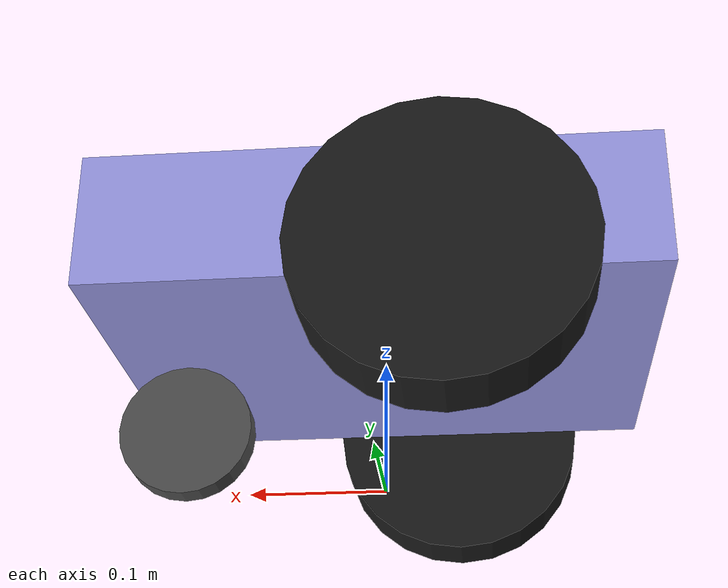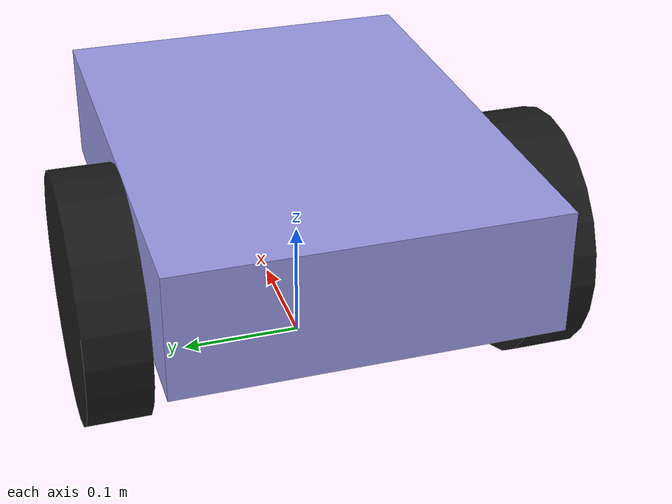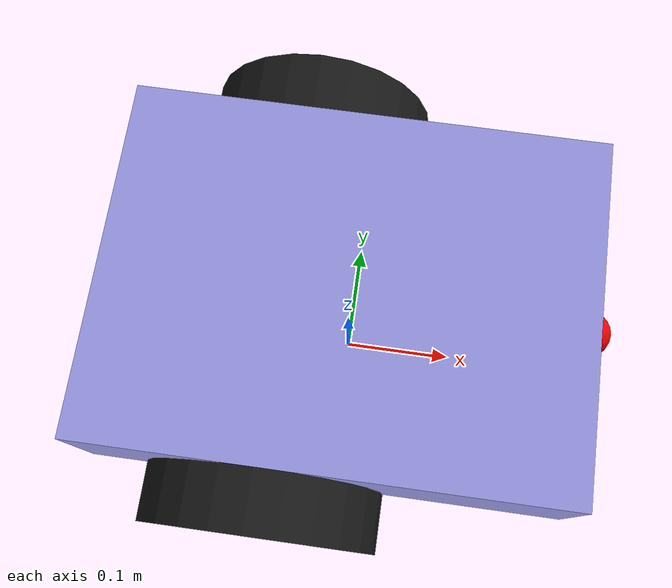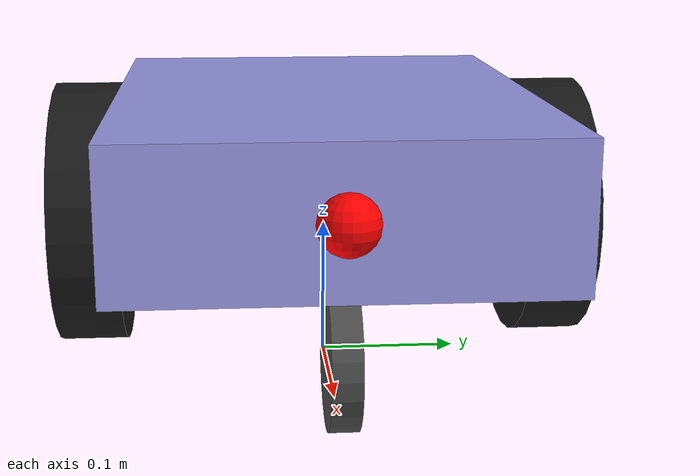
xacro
<?xml version="1.0"?>
<robot xmlns:xacro="http://ros.org/wiki/xacro" name="ground_robot">

    <xacro:arg      name="namespace"       default="!!!"/>

    <!-- Parameters -->
    <!-- chassis geometry -->
    <xacro:property name="body_length"     value="0.4"/>
    <xacro:property name="body_width"      value="0.3"/>
    <xacro:property name="body_thickness"  value="0.1"/>

    <!-- drive wheel geometry -->
    <xacro:property name="drive_wheel_radius"    value="0.1"/>
    <xacro:property name="drive_wheel_width"     value="0.05"/>
    <xacro:property name="drive_wheel_x_offset"  value="0.05"/>

    <!-- caster geometry -->
    <xacro:property name="caster_radius"   value="0.05"/>
    <xacro:property name="caster_width"    value="0.02"/>

    <!-- Base frame -->
    <link name="base_link"/>
    <joint name="base_to_chassis" type="fixed">
        <parent link="base_link"/>
        <child  link="chassis_link"/>
        <origin xyz="0 0 0" rpy="0 0 0"/>
    </joint>

    <!-- Wheel macro: generates wheel link + joint -->
    <xacro:macro name="wheel" params="name parent_link xpos ypos radius width">
      <link name="${name}">
        <visual>
          <!-- rotate cylinder so its axis is along Y -->
          <origin xyz="0 0 0" rpy="1.5708 0 0"/>
          <geometry>
            <cylinder length="${width}" radius="${radius}"/>
          </geometry>
          <material name="${name}_material">
            <color rgba="0.1 0.1 0.1 1.0"/>
          </material>
        </visual>
        <collision>
          <origin xyz="0 0 0" rpy="1.5708 0 0"/>
          <geometry>
            <cylinder length="${width}" radius="${radius}"/>
          </geometry>
        </collision>
        <inertial>
          <mass value="0.5"/>
          <inertia ixx="0.0005" ixy="0.0" ixz="0.0"
                  iyy="0.0005" iyz="0.0"
                  izz="0.0005"/>
        </inertial>
      </link>
      <joint name="${name}_joint" type="continuous">
        <parent link="${parent_link}"/>
        <child  link="${name}"/>
        <!-- lift wheel so it sits on ground -->
        <origin xyz="${xpos} ${ypos} ${radius}" rpy="0 0 0"/>
        <axis   xyz="0 1 0"/>
      </joint>
    </xacro:macro>

    <!-- Chassis link -->
    <link name="chassis_link">
      <visual>
        <!-- lift chassis so it's centered on wheels -->
        <origin xyz="0 0 ${drive_wheel_radius + body_thickness/2}" rpy="0 0 0"/>
        <geometry>
          <box size="${body_length} ${body_width} ${body_thickness}"/>
        </geometry>
        <material name="chassis_material">
          <color rgba="0.6 0.6 0.9 1.0"/>
        </material>
      </visual>
      <collision>
        <origin xyz="0 0 ${drive_wheel_radius + body_thickness/2}" rpy="0 0 0"/>
        <geometry>
          <box size="${body_length} ${body_width} ${body_thickness}"/>
        </geometry>
      </collision>
      <inertial>
        <mass value="2.0"/>
        <inertia ixx="0.03" ixy="0.0" ixz="0.0"
                iyy="0.04" iyz="0.0"
                izz="0.05"/>
      </inertial>
    </link>

    <!-- Differential-drive wheels, shifted backward -->
    <xacro:wheel name="wheel_left"  parent_link="chassis_link"
                xpos="${-drive_wheel_x_offset}" ypos="${(body_width/2 + drive_wheel_width/2)}"
                radius="${drive_wheel_radius}" width="${drive_wheel_width}"/>
    <xacro:wheel name="wheel_right" parent_link="chassis_link"
                xpos="${-drive_wheel_x_offset}" ypos="${-(body_width/2 + drive_wheel_width/2)}"
                radius="${drive_wheel_radius}" width="${drive_wheel_width}"/>

    <!-- Caster wheel link -->
    <link name="caster_link">
      <visual>
        <!-- orient cylinder axis along Y for rolling -->
        <origin xyz="0 0 0" rpy="1.5708 0 0"/>
        <geometry>
          <cylinder length="${caster_width}" radius="${caster_radius}"/>
        </geometry>
        <material name="caster_material">
          <color rgba="0.3 0.3 0.3 1.0"/>
        </material>
      </visual>
      <collision>
        <origin xyz="0 0 0" rpy="1.5708 0 0"/>
        <geometry>
          <cylinder length="${caster_width}" radius="${caster_radius}"/>
        </geometry>
      </collision>
      <inertial>
        <mass value="0.1"/>
        <inertia ixx="0.0001" ixy="0.0" ixz="0.0"
                iyy="0.0001" iyz="0.0"
                izz="0.0001"/>
      </inertial>
    </link>
    <joint name="caster_wheel_joint" type="continuous">
      <parent link="chassis_link"/>
      <child  link="caster_link"/>
      <!-- place caster at front of chassis, sitting on ground -->
      <origin xyz="${body_length/2 - caster_radius} 0 ${caster_radius}" rpy="0 0 0"/>
      <axis xyz="0 0 1"/>
    </joint>

    <!-- Laser sensor link -->
    <link name="laser_link">
      <visual>
        <origin xyz="0 0 0" rpy="0 0 0"/>
        <geometry>
          <sphere radius="0.02"/>
        </geometry>
        <material name="laser_marker">
          <color rgba="1 0 0 1"/>
        </material>
      </visual>
    </link>
    <joint name="laser_joint" type="fixed">
      <parent link="chassis_link"/>
      <child  link="laser_link"/>
      <origin xyz="0.2 0 ${drive_wheel_radius + body_thickness/2}" rpy="0 0 0"/>
    </joint>

    <!-- Gazebo GPU LIDAR plugin -->
    <gazebo reference="laser_link">
      <sensor name="laser" type="gpu_lidar">
        <gz_frame_id>$(arg namespace)/laser_link</gz_frame_id>
        <update_rate>10.0</update_rate>
        <topic>/model/$(arg namespace)/scan</topic>
        <ray>
          <scan>
            <horizontal>
              <samples>640</samples>
              <resolution>1</resolution>
              <min_angle>-0.5236</min_angle>
              <max_angle>0.5236</max_angle>
            </horizontal>
            <vertical>
              <samples>1</samples>
              <resolution>0.01</resolution>
              <min_angle>0</min_angle>
              <max_angle>0</max_angle>
            </vertical>
          </scan>
          <range>
            <min>0.12</min>
            <max>3.5</max>
          </range>
        </ray>
        <always_on>1</always_on>
        <visualize>true</visualize>
      </sensor>
    </gazebo>

    <gazebo>
      <plugin filename="gz-sim-diff-drive-system" name="gz::sim::systems::DiffDrive">
        <ros>
          <namespace>$(arg namespace)</namespace>
        </ros>

        <left_joint>wheel_left_joint</left_joint>
        <right_joint>wheel_right_joint</right_joint>
        <wheel_separation>${body_width + drive_wheel_width}</wheel_separation>
        <drive_wheel_radius>${drive_wheel_radius}</drive_wheel_radius>
        <odom_publish_frequency>50</odom_publish_frequency>
      </plugin>

      <plugin
        filename="gz-sim-joint-state-publisher-system"
        name="gz::sim::systems::JointStatePublisher">
          <topic>/model/$(arg namespace)/joint_state</topic>
      </plugin>

      <plugin
        filename="gz-sim-pose-publisher-system"
        name="gz::sim::systems::PosePublisher">
        <publish_link_pose>true</publish_link_pose>
        <use_pose_vector_msg>false</use_pose_vector_msg>
        <static_publisher>true</static_publisher>
        <static_update_frequency>1</static_update_frequency>
      </plugin>

      <plugin
        filename="gz-sim-odometry-publisher-system"
        name="gz::sim::systems::OdometryPublisher">
        <odom_frame>$(arg namespace)/odom</odom_frame>
        <robot_base_frame>$(arg namespace)</robot_base_frame>
      </plugin>
    </gazebo>
</robot>
